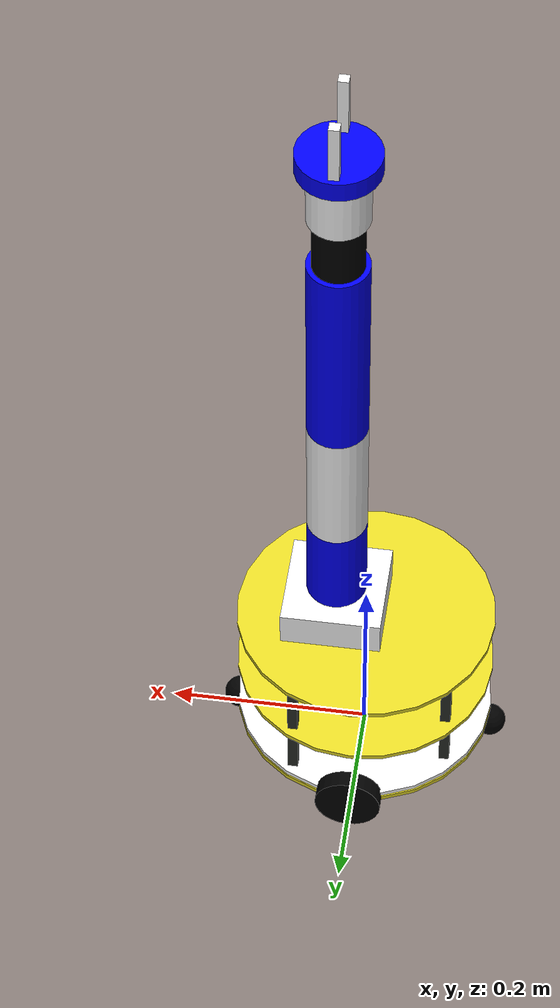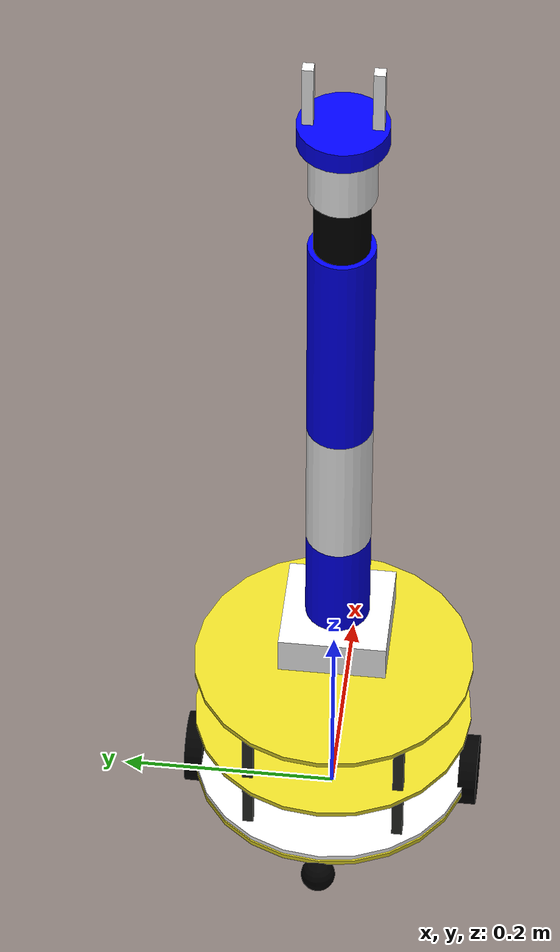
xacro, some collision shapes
<?xml version="1.0"?>
<robot name="mrobot" xmlns:xacro="http://www.ros.org/wiki/xacro">
<!-- robot_mrobot/mrobot_gazebo/urdf/dianzikeji -->

    <xacro:include filename="$(find ASLAM_gazebo_world)/urdf/test_robot.urdf.xacro" />

    <xacro:include filename="$(find ASLAM_gazebo_world)/urdf/test_arm.xacro" />

    <xacro:property name="offset_x" value="0.03" />
    <xacro:property name="offset_y" value="0" />
    <xacro:property name="offset_z" value="0.02" />

    <joint name="connect_joint" type="fixed">
        <origin xyz="${offset_x} ${offset_y} ${offset_z}" rpy="0 0 0" />
        <parent link="plate_2_link"/>
        <child link="base1_link"/>
    </joint>

    <!-- 雷达 -->
    <xacro:include filename="$(find ASLAM_gazebo_world)/urdf/test_rplidar.xacro" />

	<xacro:property name="rplidar_offset_x" value="0" />
	<xacro:property name="rplidar_offset_y" value="0" />
	<xacro:property name="rplidar_offset_z" value="-0.028" />

    <joint name="rplidar_joint" type="fixed">
		<origin xyz="${rplidar_offset_x} ${rplidar_offset_y} ${rplidar_offset_z}" rpy="0 0 0" />
		<parent link="plate_2_link"/>
		<child link="laser_link"/>
	</joint>

	<xacro:rplidar prefix="laser"/>

</robot>

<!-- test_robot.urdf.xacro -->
<robot name="mrobot" xmlns:xacro="http://www.ros.org/wiki/xacro">

	<xacro:include filename="$(find ASLAM_gazebo_world)/urdf/test_robot_body.urdf.xacro" />

	<!-- Body of mrobot, with plates, standoffs -->
	<mrobot_body/>

</robot>

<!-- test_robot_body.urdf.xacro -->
<robot name="mrobot" xmlns:xacro="http://www.ros.org/wiki/xacro">

    <!-- Defining the colors used in this robot -->

    <!-- PROPERTY LIST -->
    <!--All units in m-kg-s-radians unit system -->
    <xacro:property name="M_PI" value="3.1415926535897931" />
    <xacro:property name="shell_high_correct" value="0.04" />
    <xacro:property name="caster_high_correct" value="-0.0001" />
    <!-- Main body length, width, height and mass -->
    <xacro:property name="base_mass"        value="0.5" />
    <xacro:property name="base_link_radius" value="0.13"/>   <!-- origin: 0.13   fabo:0.2-->
    <xacro:property name="base_link_length" value="0.005"/>

    <xacro:property name="motor_x" value="0"/>

    <!-- Caster radius and mass -->
    <xacro:property name="caster_radius"          value="0.016" />
    <xacro:property name="caster_mass"            value="0.01" />
    <xacro:property name="caster_joint_origin_x"  value="-0.13" />    <!-- caster position to center.  fabo:0.2     -->

    <!-- Wheel radius, height and mass -->
    <xacro:property name="wheel_radius" value="0.033" />
    <xacro:property name="wheel_height" value="0.017" />
    <xacro:property name="wheel_mass"   value="0.1" />

    <!-- plate height and mass -->
    <xacro:property name="plate_mass"   value="0.05"/>
    <xacro:property name="plate_height" value="0.07"/>
    <xacro:property name="standoff_x"   value="0.12"/>
    <xacro:property name="standoff_y"   value="0.10"/>

    <!-- Macro for inertia matrix -->
    <xacro:macro name="sphere_inertial_matrix" params="m r">
        <inertial>
            <mass value="${m}" />
            <inertia ixx="${2*m*r*r/5}" ixy="0" ixz="0"
                iyy="${2*m*r*r/5}" iyz="0"
                izz="${2*m*r*r/5}" />
        </inertial>
    </xacro:macro>

    <xacro:macro name="cylinder_inertial_matrix" params="m r h">
        <inertial>
            <mass value="${m}" />
            <inertia ixx="${m*(3*r*r+h*h)/12}" ixy = "0" ixz = "0"
                iyy="${m*(3*r*r+h*h)/12}" iyz = "0"
                izz="${m*r*r/2}" />
        </inertial>
    </xacro:macro>

    <xacro:macro name="box_inertial_matrix" params="m w h d">
        <inertial>
            <mass value="${m}" />
            <inertia ixx="${m*(h*h+d*d)/12}" ixy = "0" ixz = "0"
                iyy="${m*(w*w+d*d)/12}" iyz = "0"
                izz="${m*(w*w+h*h)/12}" />
        </inertial>
    </xacro:macro>

    <!-- Macro for wheel joint -->
    <xacro:macro name="wheel" params="lr translateY">
        <!-- lr: left, right -->
        <link name="wheel_${lr}_link">
            <visual>
                <origin xyz="0 0 0" rpy="${M_PI/2} 0  0 " />
                <geometry>
                    <cylinder length="${wheel_height}" radius="${wheel_radius}" />
                </geometry>
                <material name="Black" />
            </visual>
            <collision>
                <origin xyz="0 0 0" rpy="${M_PI/2} 0 0 " />
                <geometry>
                    <cylinder length="${wheel_height}" radius="${wheel_radius}" />
                </geometry>
            </collision>
            <cylinder_inertial_matrix  m="${wheel_mass}" r="${wheel_radius}" h="${wheel_height}" />
        </link>

        <gazebo reference="wheel_${lr}_link">
            <material>Gazebo/Black</material>
        </gazebo>

        <joint name="base_to_wheel_${lr}_joint" type="continuous">
            <parent link="base_link"/>
            <child link="wheel_${lr}_link"/>
            <origin xyz="${motor_x} ${translateY * base_link_radius} 0" rpy="0 0 0" />
            <axis xyz="0 1 0" rpy="0  0" />

        </joint>

        <!-- Transmission is important to link the joints and the controller -->
        <transmission name="wheel_${lr}_joint_trans">
            <type>transmission_interface/SimpleTransmission</type>
            <joint name="base_to_wheel_${lr}_joint">
	    	<hardwareInterface>EffortJointInterface</hardwareInterface>
    	    </joint>
            <actuator name="wheel_${lr}_joint_motor">
                <hardwareInterface>VelocityJointInterface</hardwareInterface>

                <mechanicalReduction>1</mechanicalReduction>
            </actuator>
        </transmission>
    </xacro:macro>

    <!-- Macro for caster joint -->
    <xacro:macro name="caster" params="fb translateX">
        <!-- fb: front, back -->
        <link name="${fb}_caster_link">
            <visual>
                <origin xyz="0 0 0 " rpy="0 0 0" />
                <geometry>
                    <sphere radius="${caster_radius}" />
                </geometry>
                <material name="Black" />
            </visual>
            <collision>
                <geometry>
                    <sphere radius="${caster_radius}" />
                </geometry>
                <origin xyz="0 0 0 " rpy="0 0 0" />
            </collision>
            <sphere_inertial_matrix  m="${caster_mass}" r="${caster_radius}" />
        </link>

        <gazebo reference="${fb}_caster_link">
            <material>Gazebo/Black</material>
        </gazebo>

        <joint name="base_to_${fb}_caster_joint" type="fixed">
            <parent link="base_link"/>
            <child link="${fb}_caster_link"/>
            <origin xyz="${translateX*caster_joint_origin_x} 0 ${-caster_radius + caster_high_correct}" rpy="0 0 0"/>
        </joint>
    </xacro:macro>

    <!-- Macro for plate joint -->
    <xacro:macro name="plate" params="num parent">
        <link name="plate_${num}_link">
            <cylinder_inertial_matrix  m="0.1" r="${base_link_radius}" h="${base_link_length}" />

            <visual>
                <origin xyz=" 0 0 0 " rpy="0 0 0" />
                <geometry>
                    <cylinder length="${base_link_length}" radius="${base_link_radius}"/>
                </geometry>
                <material name="yellow"/>
            </visual>

            <collision>
                <origin xyz="0.0 0.0 0.0" rpy="0 0 0" />
                <geometry>
                    <cylinder length="${base_link_length}" radius="${base_link_radius}"/>
                </geometry>
            </collision>
        </link>
        <gazebo reference="plate_${num}_link">
            <material>Gazebo/Blue</material>
        </gazebo>
        <joint name="plate_${num}_joint" type="fixed">
            <origin xyz="0 0 ${plate_height}" rpy="0 0 0" />
            <parent link="${parent}"/>
            <child link="plate_${num}_link" />
        </joint>
    </xacro:macro>

    <!-- Macro for standoff joint -->
    <xacro:macro name="mrobot_standoff_2in" params="parent number x_loc y_loc z_loc">
        <joint name="standoff_2in_${number}_joint" type="fixed">
            <origin xyz="${x_loc} ${y_loc} ${z_loc}" rpy="0 0 0" />
            <parent link="${parent}"/>
            <child link="standoff_2in_${number}_link" />
        </joint>

        <link name="standoff_2in_${number}_link">
            <inertial>
                <mass value="0.001" />
                <origin xyz="0 0 0" />
                <inertia ixx="0.0001" ixy="0.0" ixz="0.0"
          iyy="0.0001" iyz="0.0"
          izz="0.0001" />
            </inertial>

            <visual>
                <origin xyz=" 0 0 0 " rpy="0 0 0" />
                <geometry>
                    <box size="0.01 0.01 0.07" />
                </geometry>
                <material name="black">
                    <color rgba="0.16 0.17 0.15 0.9"/>
                </material>
            </visual>

            <collision>
                <origin xyz="0.0 0.0 0.0" rpy="0 0 0" />
                <geometry>
                    <box size="0.01 0.01 0.07" />
                </geometry>
            </collision>
        </link>
    </xacro:macro>

    <!-- BASE-FOOTPRINT -->
    <!-- base_footprint is a fictitious link(frame) that is on the ground right below base_link origin -->
    <xacro:macro name="mrobot_body">
        <link name="base_footprint">
            <visual>
                <origin xyz="0 0 0" rpy="0 0 0" />
                <geometry>
                    <box size="0.001 0.001 0.001" />
                </geometry>
            </visual>
        </link>

        <joint name="base_footprint_joint" type="fixed">
            <origin xyz="0 0 ${wheel_radius}" rpy="0 0 0" />
            <parent link="base_footprint"/>
            <child link="base_link" />
        </joint>

        <!-- BASE-LINK -->
        <!--Actual body/chassis of the robot-->
        <link name="base_link">
            <cylinder_inertial_matrix  m="${base_mass}" r="${base_link_radius}" h="${base_link_length}" />
            <visual>
                <origin xyz=" 0 0 0" rpy="0 0 0" />
                <geometry>
                    <cylinder length="${base_link_length}" radius="${base_link_radius}"/>
                </geometry>
                <material name="yellow" />
            </visual>
            <collision>
                <origin xyz="0 0 0" rpy="0 0 0" />
                <geometry>
                    <cylinder length="${base_link_length}" radius="${base_link_radius}"/>
                </geometry>
            </collision>
        </link>

        <gazebo reference="base_link">
            <material>Gazebo/Blue</material>
        </gazebo>

        <!-- shell -->
        <joint name="shell_footprint_joint" type="fixed">
            <origin xyz="0 0 ${shell_high_correct}" rpy="0 0 ${M_PI}" />
            <parent link="base_footprint"/>
            <child link="shell_link" />
        </joint>

        <link
            name="shell_link">
            <inertial>
            <origin
                xyz="-0.00294082483465983 0.000146714888625652 0.442160868151096"
                rpy="0 0 0" />
            <mass
                value="1e-5" />
            <inertia
                ixx="0.172898160476508"
                ixy="2.31745522812561E-06"
                ixz="-0.00159810687296311"
                iyy="0.148915768801367"
                iyz="-4.49683641611027E-05"
                izz="0.146063097245756" />
            </inertial>
            <visual>
            <origin
                xyz="0 0 0"
                rpy="0 0 0" />
            <geometry>
                <mesh filename="package://ASLAM_gazebo_world/urdf/shell_link.STL" />
            </geometry>
            <material
                name="">
                <color
                rgba="1 1 1 1" />
            </material>
            </visual>
            <collision>
            <origin
                xyz="0 0 0"
                rpy="0 0 0" />
            <geometry>
                <cylinder length="${base_link_length}" radius="${base_link_radius}"/>
            </geometry>
            </collision>
        </link>
        <gazebo reference="shell_link">
            <material>Gazebo/Grey</material>
        </gazebo>

        <!-- Wheel Definitions -->
        <wheel lr="right"  translateY="-1" />
        <wheel lr="left"  translateY="1" />

        <!-- Casters Definitions -->
        <caster fb="front"  translateX="-1" />
        <caster fb="back"  translateX="1" />

        <!-- plates and standoff Definitions -->
        <mrobot_standoff_2in parent="base_link" number="1" x_loc="-${standoff_x/2 + 0.03}" y_loc="-${standoff_y - 0.03}" z_loc="${plate_height/2}"/>
        <mrobot_standoff_2in parent="base_link" number="2" x_loc="-${standoff_x/2 + 0.03}" y_loc="${standoff_y - 0.03}" z_loc="${plate_height/2}"/>
        <mrobot_standoff_2in parent="base_link" number="3" x_loc="${standoff_x/2}" y_loc="-${standoff_y}" z_loc="${plate_height/2}"/>
        <mrobot_standoff_2in parent="base_link" number="4" x_loc="${standoff_x/2}" y_loc="${standoff_y}" z_loc="${plate_height/2}"/>
        <mrobot_standoff_2in parent="standoff_2in_1_link" number="5" x_loc="0" y_loc="0" z_loc="${plate_height}"/>
        <mrobot_standoff_2in parent="standoff_2in_2_link" number="6" x_loc="0" y_loc="0" z_loc="${plate_height}"/>
        <mrobot_standoff_2in parent="standoff_2in_3_link" number="7" x_loc="0" y_loc="0" z_loc="${plate_height}"/>
        <mrobot_standoff_2in parent="standoff_2in_4_link" number="8" x_loc="0" y_loc="0" z_loc="${plate_height}"/>

        <!-- plate Definitions -->
        <plate num="1"  parent="base_link" />
        <plate num="2"  parent="plate_1_link" />

        <!-- controller -->
        <gazebo>
            <plugin name="differential_drive_controller" filename="libgazebo_ros_diff_drive.so">
                <rosDebugLevel>Debug</rosDebugLevel>
                <publishWheelTF>true</publishWheelTF>
                <robotNamespace>/</robotNamespace>
                <publishTf>1</publishTf>
                <publishWheelJointState>true</publishWheelJointState>
                <alwaysOn>true</alwaysOn>
                <updateRate>100.0</updateRate>
                <legacyMode>true</legacyMode>
                <leftJoint>base_to_wheel_left_joint</leftJoint>
                <rightJoint>base_to_wheel_right_joint</rightJoint>
                <wheelSeparation>${base_link_radius*2}</wheelSeparation>
                <wheelDiameter>${2*wheel_radius}</wheelDiameter>
                <broadcastTF>1</broadcastTF>
                <wheelTorque>30</wheelTorque>
                <wheelAcceleration>1.8</wheelAcceleration>
                <commandTopic>cmd_vel</commandTopic>
                <odometryFrame>odom</odometryFrame>
                <odometryTopic>odom</odometryTopic>
                <robotBaseFrame>base_footprint</robotBaseFrame>
		<legacyModeNS>true</legacyModeNS>
            </plugin>
        </gazebo>

    </xacro:macro>
</robot>

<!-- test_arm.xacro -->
<robot name="arm" xmlns:xacro="http://ros.org/wiki/xacro">

    <!-- Defining the colors used in this robot -->
    <material name="Black">
        <color rgba="0 0 0 1"/>
    </material>

    <material name="White">
        <color rgba="1 1 1 1"/>
    </material>

    <material name="Blue">
        <color rgba="0 0 1 1"/>
    </material>

    <material name="Red">
        <color rgba="1 0 0 1"/>
    </material>

    <!-- Constants -->
    <xacro:property name="M_PI" value="3.14159"/>

    <!-- link1 properties -->
    <xacro:property name="link1_width" value="0.03" />
    <xacro:property name="link1_len" value="0.10" />

    <!-- link2 properties -->
    <xacro:property name="link2_width" value="0.03" />
    <xacro:property name="link2_len" value="0.14" />

    <!-- link3 properties -->
    <xacro:property name="link3_width" value="0.03" />
    <xacro:property name="link3_len" value="0.22" />

    <!-- link4 properties -->
    <xacro:property name="link4_width" value="0.025" />
    <xacro:property name="link4_len" value="0.06" />

    <!-- link5 properties -->
    <xacro:property name="link5_width" value="0.03" />
    <xacro:property name="link5_len" value="0.06" />

    <!-- link6 properties -->
    <xacro:property name="link6_width" value="0.04" />
    <xacro:property name="link6_len" value="0.02" />

    <!-- Left gripper -->
    <xacro:property name="left_gripper_len" value="0.08" />
    <xacro:property name="left_gripper_width" value="0.01" />
    <xacro:property name="left_gripper_height" value="0.01" />

    <!-- Right gripper -->
    <xacro:property name="right_gripper_len" value="0.08" />
    <xacro:property name="right_gripper_width" value="0.01" />
    <xacro:property name="right_gripper_height" value="0.01" />

    <!-- Gripper frame -->
    <xacro:property name="grasp_frame_radius" value="0.001" />

    <!-- Inertial matrix -->
    <xacro:macro name="inertial_matrix" params="mass">
        <inertial>
            <mass value="0.0001" />
            <inertia ixx="0.0001" ixy="0" ixz="0" iyy="0.0001" iyz="0" izz="0.0001" />
        </inertial>
    </xacro:macro>

    <!-- ///////////////////////////////////////   bottom_joint   ////////////////////////////////////////// -->
    <joint name="bottom_joint" type="fixed">
        <origin xyz="0 0 0" rpy="0 0 0" />
        <parent link="base1_link"/>
        <child link="bottom_link"/>
    </joint>
    <link name="bottom_link">
        <visual>
              <origin xyz=" 0 0 -0.02"  rpy="0 0 0"/>
                  <geometry>
                       <box size="0.02 0.02 0.01" />
                  </geometry>
              <material name="Brown" />
        </visual>
        <collision>
            <origin xyz=" 0 0 -0.02"  rpy="0 0 0"/>
            <geometry>
                <box size="1 1 0.02" />
            </geometry>
        </collision>
        <xacro:inertial_matrix mass="1"/>
    </link>

    <!-- /////////////////////////////////////   BASE LINK    ////////////////////////////////////////////// -->
    <link name="base1_link">
        <visual>
            <origin xyz="0 0 0" rpy="0 0 0" />
            <geometry>
                <box size="0.1 0.1 0.04" />
            </geometry>
            <material name="White" />
        </visual>
        <collision>
            <origin xyz="0 0 0" rpy="0 0 0" />
            <geometry>
                <box size="0.1 0.1 0.04" />
            </geometry>
        </collision>
        <xacro:inertial_matrix mass="0.01"/>
    </link>

    <joint name="joint1" type="revolute">
        <parent link="base1_link"/>
        <child link="link1"/>
        <origin xyz="0 0 0.02" rpy="0 ${M_PI/2} 0" />
        <axis xyz="-1 0 0" />
        <limit effort="300" velocity="1" lower="-2.96" upper="2.96"/>
        <dynamics damping="50" friction="1"/>
    </joint>

    <!-- /////////////////////////////////////   LINK1  ////////////////////////////////////////////// -->
    <link name="link1" >
        <visual>
            <origin xyz="-${link1_len/2} 0 0" rpy="0 ${M_PI/2} 0" />
            <geometry>
                <cylinder radius="${link1_width}" length="${link1_len}"/>
            </geometry>
            <material name="Blue" />
        </visual>
        <collision>
            <origin xyz="-${link1_len/2} 0 0" rpy="0 ${M_PI/2} 0" />
            <geometry>
                <cylinder radius="${link1_width}" length="${link1_len}"/>
            </geometry>
        </collision>
        <xacro:inertial_matrix mass="0.01"/>
    </link>

    <joint name="joint2" type="revolute">
        <parent link="link1"/>
        <child link="link2"/>
        <origin xyz="-${link1_len} 0 0.0" rpy="-${M_PI/2} 0 ${M_PI/2}" />
        <axis xyz="1 0 0" />
        <limit effort="300" velocity="1" lower="-2.35" upper="2.35" />
        <dynamics damping="50" friction="1"/>
    </joint>

    <!-- ///////////////////////////////////////   LINK2  ////////////////////////////////////////////// -->
    <link name="link2" >
        <visual>
            <origin xyz="0 0 ${link2_len/2}" rpy="0 0 0" />
            <geometry>
                <cylinder radius="${link2_width}" length="${link2_len}"/>
            </geometry>
            <material name="White" />
        </visual>

        <collision>
            <origin xyz="0 0 ${link2_len/2}" rpy="0 0 0" />
            <geometry>
                <cylinder radius="${link2_width}" length="${link2_len}"/>
            </geometry>
        </collision>
        <xacro:inertial_matrix mass="0.01"/>
    </link>

    <joint name="joint3" type="revolute">
        <parent link="link2"/>
        <child link="link3"/>
        <origin xyz="0 0 ${link2_len}" rpy="0 ${M_PI} 0" />
        <axis xyz="-1 0 0" />
        <limit effort="300" velocity="1" lower="-2.62" upper="2.62" />
        <dynamics damping="50" friction="1"/>
    </joint>

    <!-- /////////////////////////////////   LINK3  ///////////////////////////////////////////////////// -->
    <link name="link3" >
        <visual>
            <origin xyz="0 0 -${link3_len/2}" rpy="0 0 0" />
            <geometry>
                <cylinder radius="${link3_width}" length="${link3_len}"/>
            </geometry>
            <material name="Blue" />
        </visual>
        <collision>
            <origin xyz="0 0 -${link3_len/2}" rpy="0 0 0" />
            <geometry>
                <cylinder radius="${link3_width}" length="${link3_len}"/>
            </geometry>
        </collision>
        <xacro:inertial_matrix mass="0.01"/>
    </link>

    <joint name="joint4" type="revolute">
        <parent link="link3"/>
        <child link="link4"/>
        <origin xyz="0.0 0.0 -${link3_len}" rpy="0 ${M_PI/2} ${M_PI}" />
        <axis xyz="1 0 0" />
        <limit effort="300" velocity="1" lower="-2.62" upper="2.62" />
        <dynamics damping="50" friction="1"/>
    </joint>

    <!-- ///////////////////////////////////   LINK4  //////////////////////////////////////////////// -->
    <link name="link4" >
        <visual>
            <origin xyz="${link4_len/2} 0 0" rpy="0 ${M_PI/2} 0" />
            <geometry>
                <cylinder radius="${link4_width}" length="${link4_len}"/>
            </geometry>
            <material name="Black" />
        </visual>
        <collision>
            <origin xyz="${link4_len/2} 0 0" rpy="0 ${M_PI/2} 0" />
            <geometry>
                <cylinder radius="${link4_width}" length="${link4_len}"/>
            </geometry>
        </collision>
        <xacro:inertial_matrix mass="0.01"/>
    </link>

    <joint name="joint5" type="revolute">
        <parent link="link4"/>
        <child link="link5"/>
        <origin xyz="${link4_len} 0.0 0.0" rpy="0 ${M_PI/2} 0" />
        <axis xyz="1 0 0" />
        <limit effort="300" velocity="1" lower="-2.62" upper="2.62" />
        <dynamics damping="50" friction="1"/>
    </joint>

    <!-- //////////////////////////////////   LINK5  ///////////////////////////////////////////////// -->
    <link name="link5">
        <visual>
            <origin xyz="0 0 ${link4_len/2}" rpy="0 0 0" />
            <geometry>
                <cylinder radius="${link5_width}" length="${link5_len}"/>
            </geometry>
            <material name="White" />
        </visual>
        <collision>
            <origin xyz="0 0 ${link4_len/2} " rpy="0 0 0" />
            <geometry>
                <cylinder radius="${link5_width}" length="${link5_len}"/>
            </geometry>
        </collision>
        <xacro:inertial_matrix mass="0.01"/>
    </link>

    <joint name="joint6" type="revolute">
        <parent link="link5"/>
        <child link="link6"/>
        <origin xyz="0 0 ${link4_len}" rpy="${1.5*M_PI} -${M_PI/2} 0" />
        <axis xyz="1 0 0" />
        <limit effort="300" velocity="1" lower="-6.28" upper="6.28" />
        <dynamics damping="50" friction="1"/>
    </joint>

    <!-- ////////////////////////////////   LINK6  ///////////////////////////////////////////////// -->
    <link name="link6">
        <visual>
            <origin xyz="${link6_len/2} 0 0 " rpy="0 ${M_PI/2} 0" />
            <geometry>
                <cylinder radius="${link6_width}" length="${link6_len}"/>
            </geometry>
            <material name="Blue" />
        </visual>
        <collision>
            <origin xyz="${link6_len/2} 0 0" rpy="0 ${M_PI/2} 0" />
            <geometry>
                <cylinder radius="${link6_width}" length="${link6_len}"/>
            </geometry>
        </collision>
        <xacro:inertial_matrix mass="0.01"/>
    </link>

    <joint name="finger_joint1" type="prismatic">
        <parent link="link6"/>
        <child link="gripper_finger_link1"/>
        <origin xyz="0.0 0 0" />
        <axis xyz="0 1 0" />
        <limit effort="100" lower="0" upper="0.06" velocity="1.0"/>
        <dynamics damping="50" friction="1"/>
    </joint>

    <!-- //////////////////////////////////////   gripper   ////////////////////////////////////////////// -->
    <!-- LEFT GRIPPER AFT LINK -->
    <link name="gripper_finger_link1">
        <visual>
            <origin xyz="0.04 -0.03 0"/>
            <geometry>
                <box size="${left_gripper_len} ${left_gripper_width} ${left_gripper_height}" />
            </geometry>
            <material name="White" />
        </visual>
        <xacro:inertial_matrix mass="0.01"/>
    </link>

    <joint name="finger_joint2" type="fixed">
        <parent link="link6"/>
        <child link="gripper_finger_link2"/>
        <origin xyz="0.0 0 0" />
    </joint>

    <!-- RIGHT GRIPPER AFT LINK -->
    <link name="gripper_finger_link2">
        <visual>
            <origin xyz="0.04 0.03 0"/>
            <geometry>
                <box size="${right_gripper_len} ${right_gripper_width} ${right_gripper_height}" />
            </geometry>
            <material name="White" />
        </visual>
        <xacro:inertial_matrix mass="0.01"/>
    </link>

    <!-- Grasping frame -->
    <link name="grasping_frame"/>

    <joint name="grasping_frame_joint" type="fixed">
      <parent link="link6"/>
      <child link="grasping_frame"/>
      <origin xyz="0.08 0 0" rpy="0 0 0"/>
    </joint>

    <!-- /////////////////////////////////   Gazebo   ////////////////////////////////////// -->
    <gazebo reference="bottom_link">
        <material>Gazebo/White</material>
    </gazebo>
    <gazebo reference="base1_link">
        <material>Gazebo/White</material>
    </gazebo>
    <gazebo reference="link1">
        <material>Gazebo/Blue</material>
    </gazebo>
    <gazebo reference="link2">
        <material>Gazebo/White</material>
    </gazebo>
    <gazebo reference="link3">
        <material>Gazebo/Blue</material>
    </gazebo>
    <gazebo reference="link4">
        <material>Gazebo/Black</material>
    </gazebo>
    <gazebo reference="link5">
        <material>Gazebo/White</material>
    </gazebo>
    <gazebo reference="link6">
        <material>Gazebo/Blue</material>
    </gazebo>
    <gazebo reference="gripper_finger_link1">
        <material>Gazebo/White</material>
    </gazebo>
    <gazebo reference="gripper_finger_link2">
        <material>Gazebo/White</material>
    </gazebo>

    <!-- Transmissions for ROS Control -->
    <xacro:macro name="transmission_block" params="joint_name">
        <transmission name="tran1">
            <type>transmission_interface/SimpleTransmission</type>
            <joint name="${joint_name}">
                <hardwareInterface>hardware_interface/PositionJointInterface</hardwareInterface>
            </joint>
            <actuator name="motor1">
                <hardwareInterface>hardware_interface/PositionJointInterface</hardwareInterface>
                <mechanicalReduction>1</mechanicalReduction>
            </actuator>
        </transmission>
    </xacro:macro>

    <xacro:transmission_block joint_name="joint1"/>
    <xacro:transmission_block joint_name="joint2"/>
    <xacro:transmission_block joint_name="joint3"/>
    <xacro:transmission_block joint_name="joint4"/>
    <xacro:transmission_block joint_name="joint5"/>
    <xacro:transmission_block joint_name="joint6"/>
    <xacro:transmission_block joint_name="finger_joint1"/>

    <!-- ros_control plugin -->
    <gazebo>
        <plugin name="gazebo_ros_control" filename="libgazebo_ros_control.so">
            <robotNamespace>/arm</robotNamespace>
	    <legacyModeNS>true</legacyModeNS>
        </plugin>
    </gazebo>

</robot>

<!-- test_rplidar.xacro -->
<robot xmlns:xacro="http://www.ros.org/wiki/xacro" name="laser">

    <xacro:macro name="rplidar" params="prefix:=laser">
        <!-- Create laser reference frame -->
        <link name="${prefix}_link">
            <inertial>
                <mass value="0.1" />
                <origin xyz="0 0 0" />
                <inertia ixx="0.01" ixy="0.0" ixz="0.0"
                         iyy="0.01" iyz="0.0"
                         izz="0.01" />
            </inertial>

            <visual>
                <origin xyz=" 0 0 0 " rpy="0 0 0" />
                <geometry>
                    <cylinder length="0.05" radius="0.05"/>
                </geometry>
                <material name="black"/>
            </visual>

            <collision>
                <origin xyz="0.0 0.0 0.0" rpy="0 0 0" />
                <geometry>
                    <cylinder length="0.06" radius="0.05"/>
                </geometry>
            </collision>
        </link>
        <gazebo reference="${prefix}_link">
            <material>Gazebo/Black</material>
        </gazebo>

        <gazebo reference="${prefix}_link">
            <sensor type="ray" name="rplidar">
                <pose>0 0 0 0 0 0</pose>
                <visualize>false</visualize>
                <update_rate>5.5</update_rate>
                <ray>
                    <scan>
                      <horizontal>
                        <samples>360</samples>
                        <resolution>1</resolution>
                        <min_angle>-3</min_angle>
                        <max_angle>3</max_angle>
                      </horizontal>
                    </scan>
                    <range>
                      <min>0.15</min>
                      <max>6.0</max>
                      <resolution>0.01</resolution>
                    </range>
                    <noise>
                      <type>gaussian</type>
                      <mean>0.0</mean>
                      <stddev>0.01</stddev>
                    </noise>
                </ray>
                <plugin name="gazebo_rplidar" filename="libgazebo_ros_laser.so">
                    <topicName>/scan</topicName>
                    <frameName>laser_link</frameName>
                </plugin>
            </sensor>
        </gazebo>

    </xacro:macro>
</robot>
